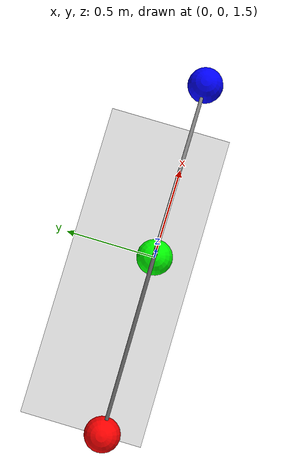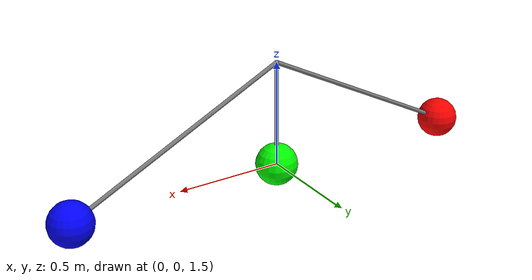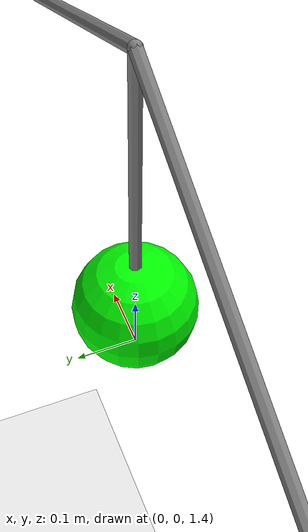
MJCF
<mujoco>
  <option gravity="0 0 -9.81"/>
  <worldbody>
    <body name="object_4" pos="0 0 -1">
      <geom type="plane" size="30 30 0.1" rgba="0.9 0.9 0.9 1"/>
    </body>
    <body name="object_5" pos="0 0 2">
      <site name="anchor_site" pos="0 0 0" size="0.01"/>
    </body>
    <body name="object_1" pos="-1 0 1.5">
      <geom type="sphere" size="0.1" mass="1" rgba="1 0 0 1"/>
      <joint name="object_1_joint" type="slide" axis="0 0 1"/>
      <site name="mass_1_site" pos="0 0 0" size="0.01"/>
    </body>
    <body name="object_2" pos="0 0 1.5">
      <geom type="sphere" size="0.1" mass="1" rgba="0 1 0 1"/>
      <joint name="object_2_joint" type="slide" axis="0 0 1"/>
      <site name="mass_2_site" pos="0 0 0" size="0.01"/>
    </body>
    <body name="object_3" pos="1 0 1.5">
      <geom type="sphere" size="0.1" mass="1.5" rgba="0 0 1 1"/>
      <joint name="object_3_joint" type="slide" axis="0 0 1"/>
      <site name="mass_3_site" pos="0 0 0" size="0.01"/>
    </body>
  </worldbody>
  <tendon>
    <spatial name="spring1" width="0.01" stiffness="20" damping="0.5">
      <site site="anchor_site"/>
      <site site="mass_1_site"/>
    </spatial>
    <spatial name="spring2" width="0.01" stiffness="20" damping="1.0">
      <site site="anchor_site"/>
      <site site="mass_2_site"/>
    </spatial>
    <spatial name="spring3" width="0.01" stiffness="20" damping="2.0">
      <site site="anchor_site"/>
      <site site="mass_3_site"/>
    </spatial>
  </tendon>
</mujoco>
